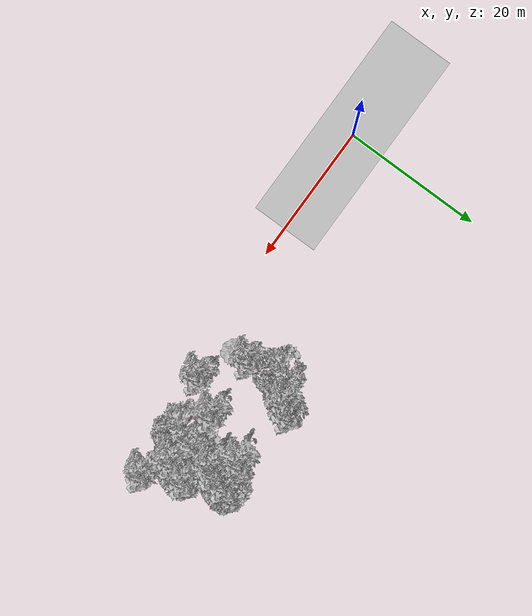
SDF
<sdf version="1.7">
 <world name="default">
  <model name="ground_plane">
   <static>1</static>
   <link name="link">
    <collision name="collision">
     <pose>-50 0 0 0 -0 0</pose>
     <geometry><plane><normal>0 0 1</normal><size>100 100</size></plane></geometry>
     <surface><contact><ode><min_depth>0.01</min_depth><max_vel>0</max_vel></ode></contact></surface>
    </collision>
    <visual name="grass">
     <cast_shadows>0</cast_shadows>
     <geometry>
      <mesh>
       <scale>0.5814285714285714 0.18142857142857144 0.1</scale>
       <uri>file://grass_plane/meshes/grass_plane.dae</uri>
      </mesh>
     </geometry>
    </visual>
   </link>
  </model>
  <model name="Tree 7">
   <static>1</static>
   <pose>47.19614981732464 8.263385943300001 0 1.57079 -0 0</pose>
   <link name="link">
    <collision name="collision">
     <geometry><mesh><scale>3.5 5 3.5</scale><uri>model://tree_2/meshes/tree_2.obj</uri></mesh></geometry>
    </collision>
    <visual name="visual">
     <geometry><mesh><scale>3.5 5 3.5</scale><uri>model://tree_2/meshes/tree_2.obj</uri></mesh></geometry>
    </visual>
   </link>
  </model>
  <model name="Tree 20">
   <static>1</static>
   <pose>43.586952294607 12.798136278993798 0 1.57079 -0 0</pose>
   <link name="link">
    <collision name="collision">
     <geometry><mesh><scale>3.5 5 3.5</scale><uri>model://tree_9/meshes/tree_9.obj</uri></mesh></geometry>
    </collision>
    <visual name="visual">
     <geometry><mesh><scale>3.5 5 3.5</scale><uri>model://tree_9/meshes/tree_9.obj</uri></mesh></geometry>
    </visual>
   </link>
  </model>
  <model name="Tree 27">
   <static>1</static>
   <pose>45.05268947053895 9.139568104182967 0 1.57079 -0 0</pose>
   <link name="link">
    <collision name="collision">
     <geometry><mesh><scale>3.5 5 3.5</scale><uri>model://tree_2/meshes/tree_2.obj</uri></mesh></geometry>
    </collision>
    <visual name="visual">
     <geometry><mesh><scale>3.5 5 3.5</scale><uri>model://tree_2/meshes/tree_2.obj</uri></mesh></geometry>
    </visual>
   </link>
  </model>
  <model name="Tree 29">
   <static>1</static>
   <pose>32.859026506648405 4.661615741895513 0 1.57079 -0 0</pose>
   <link name="link">
    <collision name="collision">
     <geometry><mesh><scale>4 2.5 4</scale><uri>model://tree_1/meshes/tree_1.obj</uri></mesh></geometry>
    </collision>
    <visual name="visual">
     <geometry><mesh><scale>4 2.5 4</scale><uri>model://tree_1/meshes/tree_1.obj</uri></mesh></geometry>
    </visual>
   </link>
  </model>
  <model name="Tree 31">
   <static>1</static>
   <pose>43.629641944730366 4.848017975946856 0 1.57079 -0 0</pose>
   <link name="link">
    <collision name="collision">
     <geometry><mesh><scale>3.5 5 3.5</scale><uri>model://tree_2/meshes/tree_2.obj</uri></mesh></geometry>
    </collision>
    <visual name="visual">
     <geometry><mesh><scale>3.5 5 3.5</scale><uri>model://tree_2/meshes/tree_2.obj</uri></mesh></geometry>
    </visual>
   </link>
  </model>
  <model name="Tree 39">
   <static>1</static>
   <pose>48.240149062940546 4.259859413721397 0 1.57079 -0 0</pose>
   <link name="link">
    <collision name="collision">
     <geometry><mesh><scale>3.5 5 3.5</scale><uri>model://tree_9/meshes/tree_9.obj</uri></mesh></geometry>
    </collision>
    <visual name="visual">
     <geometry><mesh><scale>3.5 5 3.5</scale><uri>model://tree_9/meshes/tree_9.obj</uri></mesh></geometry>
    </visual>
   </link>
  </model>
  <model name="Tree 45">
   <static>1</static>
   <pose>30.376701053576156 6.498416812295336 0 1.57079 -0 0</pose>
   <link name="link">
    <collision name="collision">
     <geometry><mesh><scale>3.5 5 3.5</scale><uri>model://tree_9/meshes/tree_9.obj</uri></mesh></geometry>
    </collision>
    <visual name="visual">
     <geometry><mesh><scale>3.5 5 3.5</scale><uri>model://tree_9/meshes/tree_9.obj</uri></mesh></geometry>
    </visual>
   </link>
  </model>
  <model name="Tree 50">
   <static>1</static>
   <pose>32.76626149887174 13.967060395683536 0 1.57079 -0 0</pose>
   <link name="link">
    <collision name="collision">
     <geometry><mesh><scale>3.5 5 3.5</scale><uri>model://tree_9/meshes/tree_9.obj</uri></mesh></geometry>
    </collision>
    <visual name="visual">
     <geometry><mesh><scale>3.5 5 3.5</scale><uri>model://tree_9/meshes/tree_9.obj</uri></mesh></geometry>
    </visual>
   </link>
  </model>
  <model name="Tree 55">
   <static>1</static>
   <pose>45.15607069556796 8.315606683575247 0 1.57079 -0 0</pose>
   <link name="link">
    <collision name="collision">
     <geometry><mesh><scale>3.5 5 3.5</scale><uri>model://tree_2/meshes/tree_2.obj</uri></mesh></geometry>
    </collision>
    <visual name="visual">
     <geometry><mesh><scale>3.5 5 3.5</scale><uri>model://tree_2/meshes/tree_2.obj</uri></mesh></geometry>
    </visual>
   </link>
  </model>
  <model name="Tree 70">
   <static>1</static>
   <pose>44.906152467213616 6.279791915494613 0 1.57079 -0 0</pose>
   <link name="link">
    <collision name="collision">
     <geometry><mesh><scale>3.5 5 3.5</scale><uri>model://tree_9/meshes/tree_9.obj</uri></mesh></geometry>
    </collision>
    <visual name="visual">
     <geometry><mesh><scale>3.5 5 3.5</scale><uri>model://tree_9/meshes/tree_9.obj</uri></mesh></geometry>
    </visual>
   </link>
  </model>
  <model name="Tree 102">
   <static>1</static>
   <pose>43.12525312308436 11.016214721994931 0 1.57079 -0 0</pose>
   <link name="link">
    <collision name="collision">
     <geometry><mesh><scale>3.5 5 3.5</scale><uri>model://tree_9/meshes/tree_9.obj</uri></mesh></geometry>
    </collision>
    <visual name="visual">
     <geometry><mesh><scale>3.5 5 3.5</scale><uri>model://tree_9/meshes/tree_9.obj</uri></mesh></geometry>
    </visual>
   </link>
  </model>
  <model name="Tree 106">
   <static>1</static>
   <pose>32.01205362940182 12.926251510971522 0 1.57079 -0 0</pose>
   <link name="link">
    <collision name="collision">
     <geometry><mesh><scale>3.5 5 3.5</scale><uri>model://tree_9/meshes/tree_9.obj</uri></mesh></geometry>
    </collision>
    <visual name="visual">
     <geometry><mesh><scale>3.5 5 3.5</scale><uri>model://tree_9/meshes/tree_9.obj</uri></mesh></geometry>
    </visual>
   </link>
  </model>
  <model name="Tree 109">
   <static>1</static>
   <pose>37.9678403894296 6.842878078943375 0 1.57079 -0 0</pose>
   <link name="link">
    <collision name="collision">
     <geometry><mesh><scale>3.5 5 3.5</scale><uri>model://tree_9/meshes/tree_9.obj</uri></mesh></geometry>
    </collision>
    <visual name="visual">
     <geometry><mesh><scale>3.5 5 3.5</scale><uri>model://tree_9/meshes/tree_9.obj</uri></mesh></geometry>
    </visual>
   </link>
  </model>
  <model name="Tree 121">
   <static>1</static>
   <pose>42.815373310362844 10.42569950796592 0 1.57079 -0 0</pose>
   <link name="link">
    <collision name="collision">
     <geometry><mesh><scale>3.5 5 3.5</scale><uri>model://tree_9/meshes/tree_9.obj</uri></mesh></geometry>
    </collision>
    <visual name="visual">
     <geometry><mesh><scale>3.5 5 3.5</scale><uri>model://tree_9/meshes/tree_9.obj</uri></mesh></geometry>
    </visual>
   </link>
  </model>
  <model name="Tree 134">
   <static>1</static>
   <pose>45.524656253924476 13.522709811582136 0 1.57079 -0 0</pose>
   <link name="link">
    <collision name="collision">
     <geometry><mesh><scale>3.5 5 3.5</scale><uri>model://tree_2/meshes/tree_2.obj</uri></mesh></geometry>
    </collision>
    <visual name="visual">
     <geometry><mesh><scale>3.5 5 3.5</scale><uri>model://tree_2/meshes/tree_2.obj</uri></mesh></geometry>
    </visual>
   </link>
  </model>
  <model name="Tree 138">
   <static>1</static>
   <pose>46.2861685328069 7.649337019180454 0 1.57079 -0 0</pose>
   <link name="link">
    <collision name="collision">
     <geometry><mesh><scale>3.5 5 3.5</scale><uri>model://tree_2/meshes/tree_2.obj</uri></mesh></geometry>
    </collision>
    <visual name="visual">
     <geometry><mesh><scale>3.5 5 3.5</scale><uri>model://tree_2/meshes/tree_2.obj</uri></mesh></geometry>
    </visual>
   </link>
  </model>
  <model name="Tree 143">
   <static>1</static>
   <pose>44.964027096830335 7.9132708043375395 0 1.57079 -0 0</pose>
   <link name="link">
    <collision name="collision">
     <geometry><mesh><scale>3.5 5 3.5</scale><uri>model://tree_2/meshes/tree_2.obj</uri></mesh></geometry>
    </collision>
    <visual name="visual">
     <geometry><mesh><scale>3.5 5 3.5</scale><uri>model://tree_2/meshes/tree_2.obj</uri></mesh></geometry>
    </visual>
   </link>
  </model>
  <model name="Tree 146">
   <static>1</static>
   <pose>30.771764360251524 10.836943164447739 0 1.57079 -0 0</pose>
   <link name="link">
    <collision name="collision">
     <geometry><mesh><scale>3.5 5 3.5</scale><uri>model://tree_2/meshes/tree_2.obj</uri></mesh></geometry>
    </collision>
    <visual name="visual">
     <geometry><mesh><scale>3.5 5 3.5</scale><uri>model://tree_2/meshes/tree_2.obj</uri></mesh></geometry>
    </visual>
   </link>
  </model>
  <model name="Tree 149">
   <static>1</static>
   <pose>35.32177562338228 2.909141844331778 0 1.57079 -0 0</pose>
   <link name="link">
    <collision name="collision">
     <geometry><mesh><scale>3.5 5 3.5</scale><uri>model://tree_9/meshes/tree_9.obj</uri></mesh></geometry>
    </collision>
    <visual name="visual">
     <geometry><mesh><scale>3.5 5 3.5</scale><uri>model://tree_9/meshes/tree_9.obj</uri></mesh></geometry>
    </visual>
   </link>
  </model>
  <model name="Tree 153">
   <static>1</static>
   <pose>46.080176025806736 6.848277552611179 0 1.57079 -0 0</pose>
   <link name="link">
    <collision name="collision">
     <geometry><mesh><scale>3.5 5 3.5</scale><uri>model://tree_2/meshes/tree_2.obj</uri></mesh></geometry>
    </collision>
    <visual name="visual">
     <geometry><mesh><scale>3.5 5 3.5</scale><uri>model://tree_2/meshes/tree_2.obj</uri></mesh></geometry>
    </visual>
   </link>
  </model>
  <model name="Tree 173">
   <static>1</static>
   <pose>40.51051058575872 12.686945218693907 0 1.57079 -0 0</pose>
   <link name="link">
    <collision name="collision">
     <geometry><mesh><scale>3.5 5 3.5</scale><uri>model://tree_9/meshes/tree_9.obj</uri></mesh></geometry>
    </collision>
    <visual name="visual">
     <geometry><mesh><scale>3.5 5 3.5</scale><uri>model://tree_9/meshes/tree_9.obj</uri></mesh></geometry>
    </visual>
   </link>
  </model>
  <model name="Tree 178">
   <static>1</static>
   <pose>45.95619702022201 8.698362847857236 0 1.57079 -0 0</pose>
   <link name="link">
    <collision name="collision">
     <geometry><mesh><scale>3.5 5 3.5</scale><uri>model://tree_9/meshes/tree_9.obj</uri></mesh></geometry>
    </collision>
    <visual name="visual">
     <geometry><mesh><scale>3.5 5 3.5</scale><uri>model://tree_9/meshes/tree_9.obj</uri></mesh></geometry>
    </visual>
   </link>
  </model>
 </world>
</sdf>
